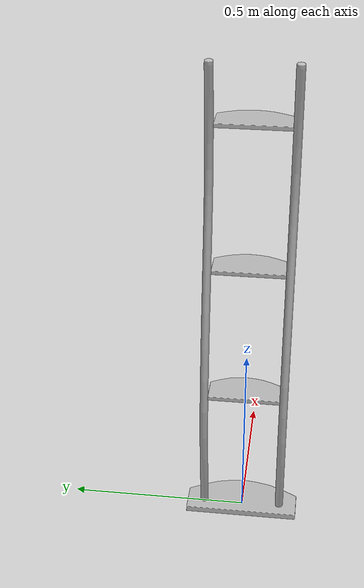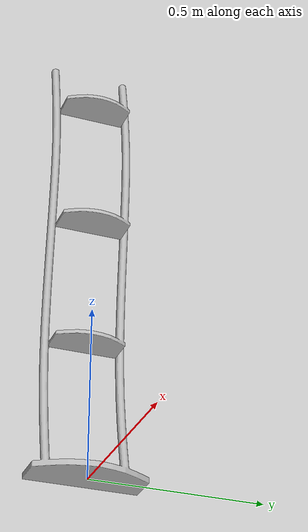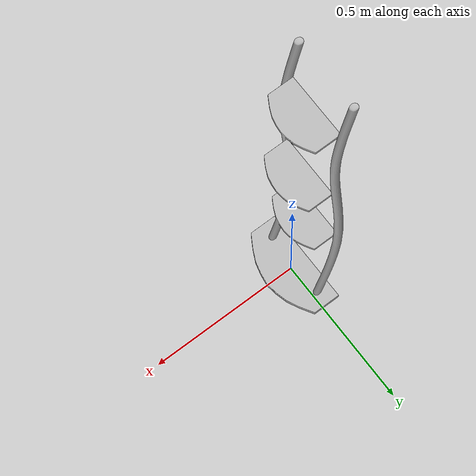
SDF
<?xml version='1.0'?>
<sdf version='1.4'>
  <model name='192'>
    <pose>0 0 0 0 0 0</pose>
    <static>true</static>
    <link name='link'>
      <collision name='collision'>
        <pose>0 0 0 0 0 0</pose>
        <geometry>
          <box>
            <size>0.199894 0.318718 2</size>
          </box>
        </geometry>
      </collision>
      <visual name='visual'>
        <pose>0 0 0 0 0 0</pose>
        <geometry>
          <mesh><uri>model://192/192.dae</uri></mesh>
        </geometry>
      </visual>
    </link>
  </model>
</sdf>
